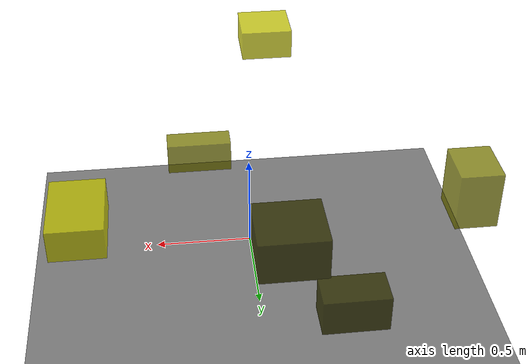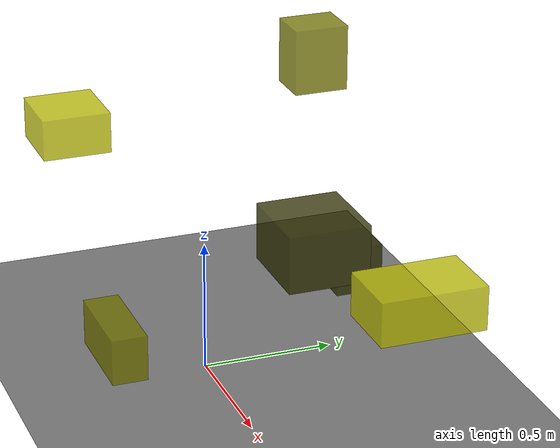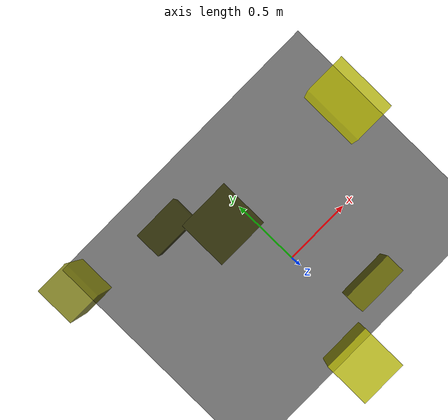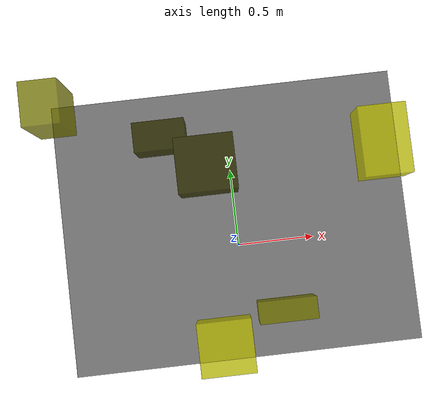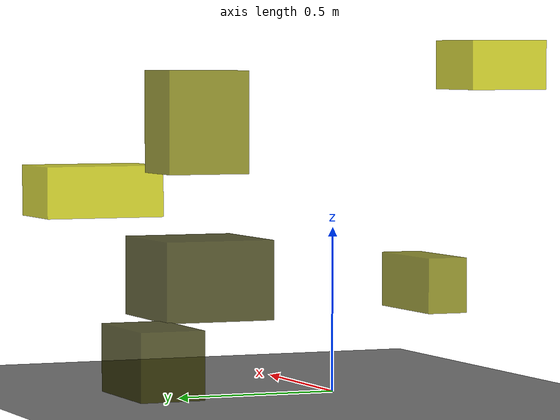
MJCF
<?xml version="1.0"?>
<mujoco model="obstacle_scene">
  <compiler angle="radian" coordinate="local"/>
  <option timestep="0.001" gravity="0 0 -9.81"/>

  <asset>
    <material name="obstacle_mat" rgba="0.8 0.8 0.0 0.8"/>
    <material name="ground_mat" rgba="0.5 0.5 0.5 1"/>
  </asset>

  <worldbody>
    <!-- Ground plane -->
    <geom name="ground" type="plane" size="3 3 0.1" material="ground_mat"/>

    <!-- Obstacles -->
    <body name="obstacle_0" pos="-0.147681 0.491347 0.371565">
      <geom name="obs_0" type="box" size="0.175597 0.164993 0.116164" rgba="0.2 0.2 0.0 0.8"/>
    </body>
    <body name="obstacle_1" pos="0.241049 -0.420109 0.304378">
      <geom name="obs_1" type="box" size="0.174509 0.064976 0.085907" rgba="0.5 0.5 0.0 0.8"/>
    </body>
    <body name="obstacle_2" pos="0.846120 0.477796 0.583482">
      <geom name="obs_2" type="box" size="0.132129 0.195142 0.082174" rgba="0.8 0.8 0.0 0.8"/>
    </body>
    <body name="obstacle_3" pos="-0.424732 0.737605 0.161306">
      <geom name="obs_3" type="box" size="0.164398 0.094477 0.097407" rgba="0.2 0.2 0.0 0.8"/>
    </body>
    <body name="obstacle_4" pos="-0.903225 0.787766 0.846168">
      <geom name="obs_4" type="box" size="0.094511 0.111610 0.136017" rgba="0.5 0.5 0.0 0.8"/>
    </body>
    <body name="obstacle_5" pos="-0.132810 -0.466560 0.992086">
      <geom name="obs_5" type="box" size="0.127327 0.123212 0.074459" rgba="0.8 0.8 0.0 0.8"/>
    </body>
  </worldbody>
</mujoco>
